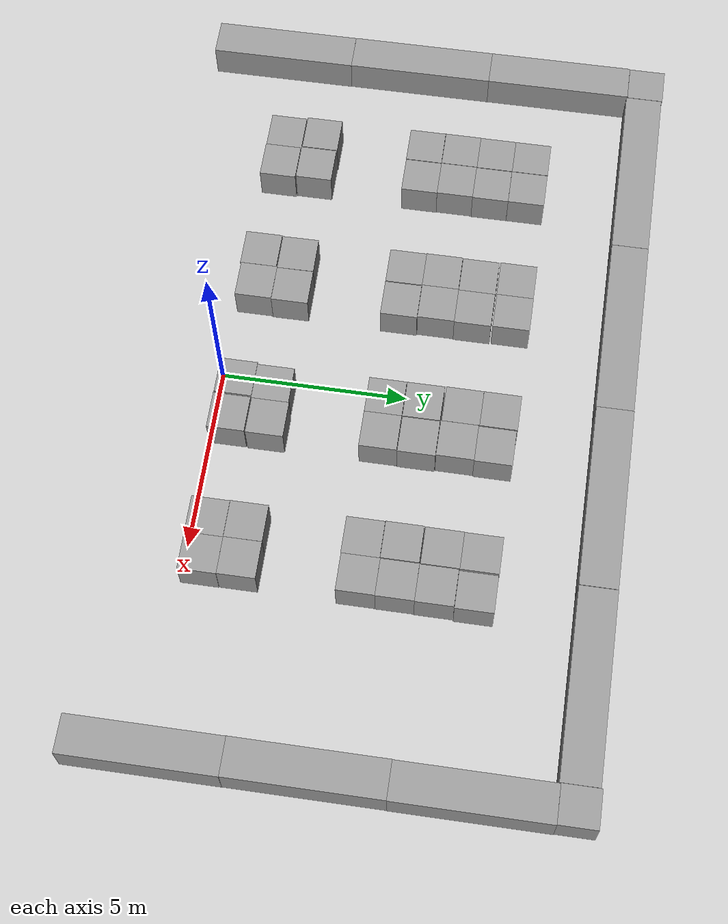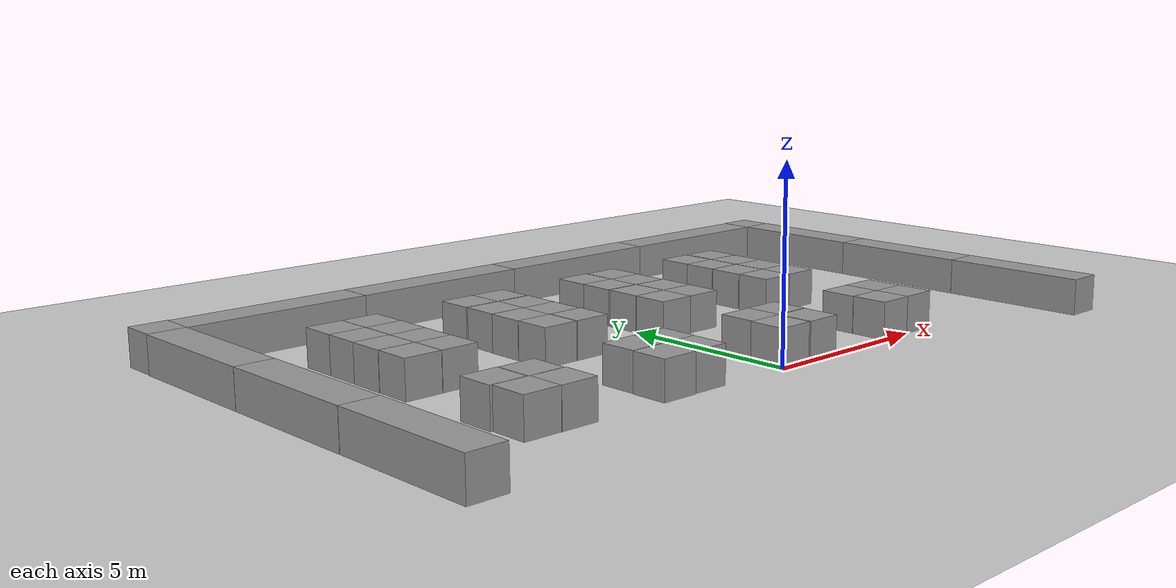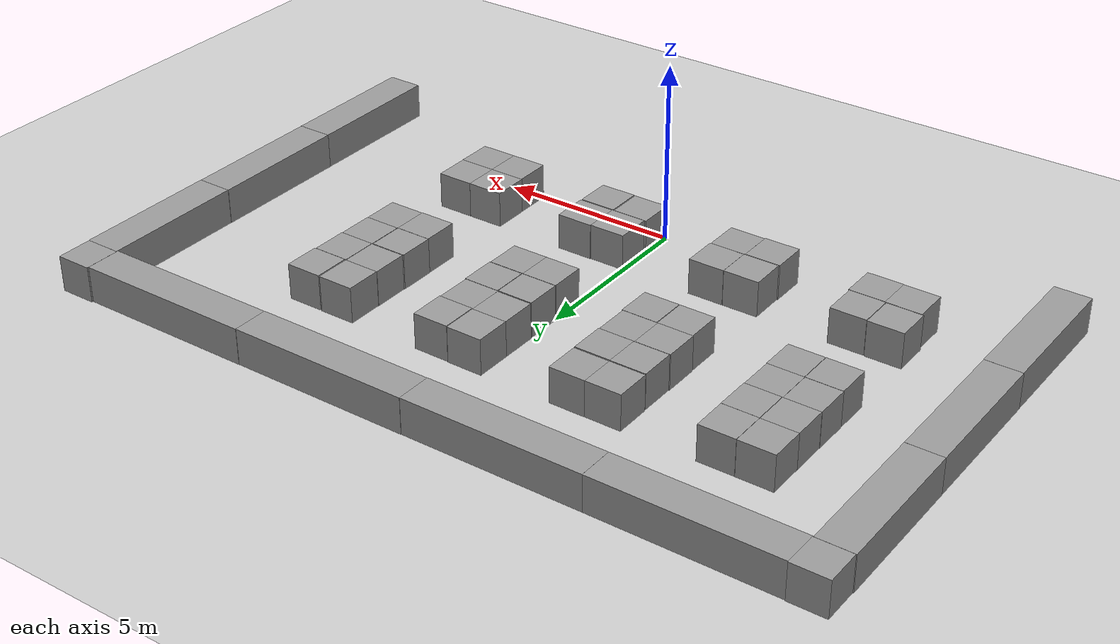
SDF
<sdf version="1.7">
 <world name="default">
  <model name="ground_plane">
   <static>1</static>
   <link name="link">
    <collision name="collision">
     <geometry><plane><normal>0 0 1</normal><size>100 100</size></plane></geometry>
     <surface>
      <contact><collide_bitmask>65535</collide_bitmask></contact>
      <friction><ode><mu>100</mu><mu2>50</mu2></ode></friction>
     </surface>
    </collision>
    <visual name="visual">
     <cast_shadows>0</cast_shadows>
     <geometry><plane><normal>0 0 1</normal><size>100 100</size></plane></geometry>
     <material>
      <script><uri>file://media/materials/scripts/gazebo.material</uri><name>Gazebo/Grey</name></script>
     </material>
    </visual>
   </link>
  </model>
  <model name="unit_box_3">
   <pose>-7.50361 7.53139 0.499995 0 1e-05 -5.5e-05</pose>
   <link name="link">
    <inertial>
     <mass>1</mass>
     <inertia>
      <ixx>0.166667</ixx>
      <ixy>0</ixy>
      <ixz>0</ixz>
      <iyy>0.166667</iyy>
      <iyz>0</iyz>
      <izz>0.166667</izz>
     </inertia>
    </inertial>
    <collision name="collision"><geometry><box><size>1 1 1</size></box></geometry></collision>
    <visual name="visual">
     <geometry><box><size>1 1 1</size></box></geometry>
     <material>
      <script><name>Gazebo/Grey</name><uri>file://media/materials/scripts/gazebo.material</uri></script>
     </material>
    </visual>
   </link>
  </model>
  <model name="unit_box_4">
   <pose>-6.49606 7.5287 0.499995 0 1e-05 0</pose>
   <link name="link">
    <inertial>
     <mass>1</mass>
     <inertia>
      <ixx>0.166667</ixx>
      <ixy>0</ixy>
      <ixz>0</ixz>
      <iyy>0.166667</iyy>
      <iyz>0</iyz>
      <izz>0.166667</izz>
     </inertia>
    </inertial>
    <collision name="collision"><geometry><box><size>1 1 1</size></box></geometry></collision>
    <visual name="visual">
     <geometry><box><size>1 1 1</size></box></geometry>
     <material>
      <script><name>Gazebo/Grey</name><uri>file://media/materials/scripts/gazebo.material</uri></script>
     </material>
    </visual>
   </link>
  </model>
  <model name="unit_box_5">
   <pose>-7.50463 6.53138 0.499995 -0 1e-05 -5.4e-05</pose>
   <link name="link">
    <inertial>
     <mass>1</mass>
     <inertia>
      <ixx>0.166667</ixx>
      <ixy>0</ixy>
      <ixz>0</ixz>
      <iyy>0.166667</iyy>
      <iyz>0</iyz>
      <izz>0.166667</izz>
     </inertia>
    </inertial>
    <collision name="collision"><geometry><box><size>1 1 1</size></box></geometry></collision>
    <visual name="visual">
     <geometry><box><size>1 1 1</size></box></geometry>
     <material>
      <script><name>Gazebo/Grey</name><uri>file://media/materials/scripts/gazebo.material</uri></script>
     </material>
    </visual>
   </link>
  </model>
  <model name="unit_box_7">
   <pose>-7.51098 5.53137 0.499995 0 -1e-05 -6.3e-05</pose>
   <link name="link">
    <inertial>
     <mass>1</mass>
     <inertia>
      <ixx>0.166667</ixx>
      <ixy>0</ixy>
      <ixz>0</ixz>
      <iyy>0.166667</iyy>
      <iyz>0</iyz>
      <izz>0.166667</izz>
     </inertia>
    </inertial>
    <collision name="collision"><geometry><box><size>1 1 1</size></box></geometry></collision>
    <visual name="visual">
     <geometry><box><size>1 1 1</size></box></geometry>
     <material>
      <script><name>Gazebo/Grey</name><uri>file://media/materials/scripts/gazebo.material</uri></script>
     </material>
    </visual>
   </link>
  </model>
  <model name="unit_box_8">
   <pose>-6.5049 5.5275 0.499995 -1e-05 -0 -0.000313</pose>
   <link name="link">
    <inertial>
     <mass>1</mass>
     <inertia>
      <ixx>0.166667</ixx>
      <ixy>0</ixy>
      <ixz>0</ixz>
      <iyy>0.166667</iyy>
      <iyz>0</iyz>
      <izz>0.166667</izz>
     </inertia>
    </inertial>
    <collision name="collision"><geometry><box><size>1 1 1</size></box></geometry></collision>
    <visual name="visual">
     <geometry><box><size>1 1 1</size></box></geometry>
     <material>
      <script><name>Gazebo/Grey</name><uri>file://media/materials/scripts/gazebo.material</uri></script>
     </material>
    </visual>
   </link>
  </model>
  <model name="unit_box_9">
   <pose>-7.50552 4.52464 0.499995 0 1e-05 0</pose>
   <link name="link">
    <inertial>
     <mass>1</mass>
     <inertia>
      <ixx>0.166667</ixx>
      <ixy>0</ixy>
      <ixz>0</ixz>
      <iyy>0.166667</iyy>
      <iyz>0</iyz>
      <izz>0.166667</izz>
     </inertia>
    </inertial>
    <collision name="collision"><geometry><box><size>1 1 1</size></box></geometry></collision>
    <visual name="visual">
     <geometry><box><size>1 1 1</size></box></geometry>
     <material>
      <script><name>Gazebo/Grey</name><uri>file://media/materials/scripts/gazebo.material</uri></script>
     </material>
    </visual>
   </link>
  </model>
  <model name="unit_box_10">
   <pose>-6.49293 4.52745 0.499995 -0 1e-05 -0.000247</pose>
   <link name="link">
    <inertial>
     <mass>1</mass>
     <inertia>
      <ixx>0.166667</ixx>
      <ixy>0</ixy>
      <ixz>0</ixz>
      <iyy>0.166667</iyy>
      <iyz>0</iyz>
      <izz>0.166667</izz>
     </inertia>
    </inertial>
    <collision name="collision"><geometry><box><size>1 1 1</size></box></geometry></collision>
    <visual name="visual">
     <geometry><box><size>1 1 1</size></box></geometry>
     <material>
      <script><name>Gazebo/Grey</name><uri>file://media/materials/scripts/gazebo.material</uri></script>
     </material>
    </visual>
   </link>
  </model>
  <model name="unit_box_6">
   <pose>-6.49182 6.52749 0.499995 0 1e-05 -0.000314</pose>
   <link name="link">
    <inertial>
     <mass>1</mass>
     <inertia>
      <ixx>0.166667</ixx>
      <ixy>0</ixy>
      <ixz>0</ixz>
      <iyy>0.166667</iyy>
      <iyz>0</iyz>
      <izz>0.166667</izz>
     </inertia>
    </inertial>
    <collision name="collision"><geometry><box><size>1 1 1</size></box></geometry></collision>
    <visual name="visual">
     <geometry><box><size>1 1 1</size></box></geometry>
     <material>
      <script><name>Gazebo/Grey</name><uri>file://media/materials/scripts/gazebo.material</uri></script>
     </material>
    </visual>
   </link>
  </model>
  <model name="unit_box_11">
   <pose>-3.49602 7.55128 0.499995 1e-05 -0 4.2e-05</pose>
   <link name="link">
    <inertial>
     <mass>1</mass>
     <inertia>
      <ixx>0.166667</ixx>
      <ixy>0</ixy>
      <ixz>0</ixz>
      <iyy>0.166667</iyy>
      <iyz>0</iyz>
      <izz>0.166667</izz>
     </inertia>
    </inertial>
    <collision name="collision"><geometry><box><size>1 1 1</size></box></geometry></collision>
    <visual name="visual">
     <geometry><box><size>1 1 1</size></box></geometry>
     <material>
      <script><name>Gazebo/Grey</name><uri>file://media/materials/scripts/gazebo.material</uri></script>
     </material>
    </visual>
   </link>
  </model>
  <model name="unit_box_12">
   <pose>-2.49602 7.55405 0.499995 -1e-05 -0 4.2e-05</pose>
   <link name="link">
    <inertial>
     <mass>1</mass>
     <inertia>
      <ixx>0.166667</ixx>
      <ixy>0</ixy>
      <ixz>0</ixz>
      <iyy>0.166667</iyy>
      <iyz>0</iyz>
      <izz>0.166667</izz>
     </inertia>
    </inertial>
    <collision name="collision"><geometry><box><size>1 1 1</size></box></geometry></collision>
    <visual name="visual">
     <geometry><box><size>1 1 1</size></box></geometry>
     <material>
      <script><name>Gazebo/Grey</name><uri>file://media/materials/scripts/gazebo.material</uri></script>
     </material>
    </visual>
   </link>
  </model>
  <model name="unit_box_13">
   <pose>-3.48434 6.51776 0.499995 1e-05 -0 0.000317</pose>
   <link name="link">
    <inertial>
     <mass>1</mass>
     <inertia>
      <ixx>0.166667</ixx>
      <ixy>0</ixy>
      <ixz>0</ixz>
      <iyy>0.166667</iyy>
      <iyz>0</iyz>
      <izz>0.166667</izz>
     </inertia>
    </inertial>
    <collision name="collision"><geometry><box><size>1 1 1</size></box></geometry></collision>
    <visual name="visual">
     <geometry><box><size>1 1 1</size></box></geometry>
     <material>
      <script><name>Gazebo/Grey</name><uri>file://media/materials/scripts/gazebo.material</uri></script>
     </material>
    </visual>
   </link>
  </model>
  <model name="unit_box_14">
   <pose>-2.48433 6.51289 0.5 0 -0 0.000316</pose>
   <link name="link">
    <inertial>
     <mass>1</mass>
     <inertia>
      <ixx>0.166667</ixx>
      <ixy>0</ixy>
      <ixz>0</ixz>
      <iyy>0.166667</iyy>
      <iyz>0</iyz>
      <izz>0.166667</izz>
     </inertia>
    </inertial>
    <collision name="collision"><geometry><box><size>1 1 1</size></box></geometry></collision>
    <visual name="visual">
     <geometry><box><size>1 1 1</size></box></geometry>
     <material>
      <script><name>Gazebo/Grey</name><uri>file://media/materials/scripts/gazebo.material</uri></script>
     </material>
    </visual>
   </link>
  </model>
  <model name="unit_box_15">
   <pose>-3.50144 5.50839 0.499995 -0 -1e-05 0.000289</pose>
   <link name="link">
    <inertial>
     <mass>1</mass>
     <inertia>
      <ixx>0.166667</ixx>
      <ixy>0</ixy>
      <ixz>0</ixz>
      <iyy>0.166667</iyy>
      <iyz>0</iyz>
      <izz>0.166667</izz>
     </inertia>
    </inertial>
    <collision name="collision"><geometry><box><size>1 1 1</size></box></geometry></collision>
    <visual name="visual">
     <geometry><box><size>1 1 1</size></box></geometry>
     <material>
      <script><name>Gazebo/Grey</name><uri>file://media/materials/scripts/gazebo.material</uri></script>
     </material>
    </visual>
   </link>
  </model>
  <model name="unit_box_16">
   <pose>-2.50142 5.51286 0.499995 1e-05 -0 0.000288</pose>
   <link name="link">
    <inertial>
     <mass>1</mass>
     <inertia>
      <ixx>0.166667</ixx>
      <ixy>0</ixy>
      <ixz>0</ixz>
      <iyy>0.166667</iyy>
      <iyz>0</iyz>
      <izz>0.166667</izz>
     </inertia>
    </inertial>
    <collision name="collision"><geometry><box><size>1 1 1</size></box></geometry></collision>
    <visual name="visual">
     <geometry><box><size>1 1 1</size></box></geometry>
     <material>
      <script><name>Gazebo/Grey</name><uri>file://media/materials/scripts/gazebo.material</uri></script>
     </material>
    </visual>
   </link>
  </model>
  <model name="unit_box_17">
   <pose>-3.48682 4.50839 0.499995 0 -1e-05 0.00029</pose>
   <link name="link">
    <inertial>
     <mass>1</mass>
     <inertia>
      <ixx>0.166667</ixx>
      <ixy>0</ixy>
      <ixz>0</ixz>
      <iyy>0.166667</iyy>
      <iyz>0</iyz>
      <izz>0.166667</izz>
     </inertia>
    </inertial>
    <collision name="collision"><geometry><box><size>1 1 1</size></box></geometry></collision>
    <visual name="visual">
     <geometry><box><size>1 1 1</size></box></geometry>
     <material>
      <script><name>Gazebo/Grey</name><uri>file://media/materials/scripts/gazebo.material</uri></script>
     </material>
    </visual>
   </link>
  </model>
  <model name="unit_box_18">
   <pose>-2.46798 4.50679 0.499995 0 1e-05 0</pose>
   <link name="link">
    <inertial>
     <mass>1</mass>
     <inertia>
      <ixx>0.166667</ixx>
      <ixy>0</ixy>
      <ixz>0</ixz>
      <iyy>0.166667</iyy>
      <iyz>0</iyz>
      <izz>0.166667</izz>
     </inertia>
    </inertial>
    <collision name="collision"><geometry><box><size>1 1 1</size></box></geometry></collision>
    <visual name="visual">
     <geometry><box><size>1 1 1</size></box></geometry>
     <material>
      <script><name>Gazebo/Grey</name><uri>file://media/materials/scripts/gazebo.material</uri></script>
     </material>
    </visual>
   </link>
  </model>
  <model name="unit_box_19">
   <pose>0.486806 7.5569 0.499995 0 1e-05 -0.003814</pose>
   <link name="link">
    <inertial>
     <mass>1</mass>
     <inertia>
      <ixx>0.166667</ixx>
      <ixy>0</ixy>
      <ixz>0</ixz>
      <iyy>0.166667</iyy>
      <iyz>0</iyz>
      <izz>0.166667</izz>
     </inertia>
    </inertial>
    <collision name="collision"><geometry><box><size>1 1 1</size></box></geometry></collision>
    <visual name="visual">
     <geometry><box><size>1 1 1</size></box></geometry>
     <material>
      <script><name>Gazebo/Grey</name><uri>file://media/materials/scripts/gazebo.material</uri></script>
     </material>
    </visual>
   </link>
  </model>
  <model name="unit_box_20">
   <pose>0.484165 6.55672 0.499995 -1e-05 0 -0.003555</pose>
   <link name="link">
    <inertial>
     <mass>1</mass>
     <inertia>
      <ixx>0.166667</ixx>
      <ixy>0</ixy>
      <ixz>0</ixz>
      <iyy>0.166667</iyy>
      <iyz>0</iyz>
      <izz>0.166667</izz>
     </inertia>
    </inertial>
    <collision name="collision"><geometry><box><size>1 1 1</size></box></geometry></collision>
    <visual name="visual">
     <geometry><box><size>1 1 1</size></box></geometry>
     <material>
      <script><name>Gazebo/Grey</name><uri>file://media/materials/scripts/gazebo.material</uri></script>
     </material>
    </visual>
   </link>
  </model>
  <model name="unit_box_21">
   <pose>1.50946 7.53476 0.499995 1e-05 -0 -0.003222</pose>
   <link name="link">
    <inertial>
     <mass>1</mass>
     <inertia>
      <ixx>0.166667</ixx>
      <ixy>0</ixy>
      <ixz>0</ixz>
      <iyy>0.166667</iyy>
      <iyz>0</iyz>
      <izz>0.166667</izz>
     </inertia>
    </inertial>
    <collision name="collision"><geometry><box><size>1 1 1</size></box></geometry></collision>
    <visual name="visual">
     <geometry><box><size>1 1 1</size></box></geometry>
     <material>
      <script><name>Gazebo/Grey</name><uri>file://media/materials/scripts/gazebo.material</uri></script>
     </material>
    </visual>
   </link>
  </model>
  <model name="unit_box_22">
   <pose>1.48426 6.5347 0.499995 1e-05 -0 -0.003346</pose>
   <link name="link">
    <inertial>
     <mass>1</mass>
     <inertia>
      <ixx>0.166667</ixx>
      <ixy>0</ixy>
      <ixz>0</ixz>
      <iyy>0.166667</iyy>
      <iyz>0</iyz>
      <izz>0.166667</izz>
     </inertia>
    </inertial>
    <collision name="collision"><geometry><box><size>1 1 1</size></box></geometry></collision>
    <visual name="visual">
     <geometry><box><size>1 1 1</size></box></geometry>
     <material>
      <script><name>Gazebo/Grey</name><uri>file://media/materials/scripts/gazebo.material</uri></script>
     </material>
    </visual>
   </link>
  </model>
  <model name="unit_box_23">
   <pose>0.491891 5.52017 0.499995 0 1e-05 0</pose>
   <link name="link">
    <inertial>
     <mass>1</mass>
     <inertia>
      <ixx>0.166667</ixx>
      <ixy>0</ixy>
      <ixz>0</ixz>
      <iyy>0.166667</iyy>
      <iyz>0</iyz>
      <izz>0.166667</izz>
     </inertia>
    </inertial>
    <collision name="collision"><geometry><box><size>1 1 1</size></box></geometry></collision>
    <visual name="visual">
     <geometry><box><size>1 1 1</size></box></geometry>
     <material>
      <script><name>Gazebo/Grey</name><uri>file://media/materials/scripts/gazebo.material</uri></script>
     </material>
    </visual>
   </link>
  </model>
  <model name="unit_box_24">
   <pose>1.50944 5.52411 0.499995 0 1e-05 0</pose>
   <link name="link">
    <inertial>
     <mass>1</mass>
     <inertia>
      <ixx>0.166667</ixx>
      <ixy>0</ixy>
      <ixz>0</ixz>
      <iyy>0.166667</iyy>
      <iyz>0</iyz>
      <izz>0.166667</izz>
     </inertia>
    </inertial>
    <collision name="collision"><geometry><box><size>1 1 1</size></box></geometry></collision>
    <visual name="visual">
     <geometry><box><size>1 1 1</size></box></geometry>
     <material>
      <script><name>Gazebo/Grey</name><uri>file://media/materials/scripts/gazebo.material</uri></script>
     </material>
    </visual>
   </link>
  </model>
  <model name="unit_box_25">
   <pose>0.492022 4.50931 0.499995 1e-05 -0 5e-06</pose>
   <link name="link">
    <inertial>
     <mass>1</mass>
     <inertia>
      <ixx>0.166667</ixx>
      <ixy>0</ixy>
      <ixz>0</ixz>
      <iyy>0.166667</iyy>
      <iyz>0</iyz>
      <izz>0.166667</izz>
     </inertia>
    </inertial>
    <collision name="collision"><geometry><box><size>1 1 1</size></box></geometry></collision>
    <visual name="visual">
     <geometry><box><size>1 1 1</size></box></geometry>
     <material>
      <script><name>Gazebo/Grey</name><uri>file://media/materials/scripts/gazebo.material</uri></script>
     </material>
    </visual>
   </link>
  </model>
  <model name="unit_box_26">
   <pose>1.49204 4.50876 0.499995 -1e-05 -0 1e-05</pose>
   <link name="link">
    <inertial>
     <mass>1</mass>
     <inertia>
      <ixx>0.166667</ixx>
      <ixy>0</ixy>
      <ixz>0</ixz>
      <iyy>0.166667</iyy>
      <iyz>0</iyz>
      <izz>0.166667</izz>
     </inertia>
    </inertial>
    <collision name="collision"><geometry><box><size>1 1 1</size></box></geometry></collision>
    <visual name="visual">
     <geometry><box><size>1 1 1</size></box></geometry>
     <material>
      <script><name>Gazebo/Grey</name><uri>file://media/materials/scripts/gazebo.material</uri></script>
     </material>
    </visual>
   </link>
  </model>
  <model name="unit_box_27">
   <pose>4.51157 7.53417 0.499995 -1e-05 -0 -2.4e-05</pose>
   <link name="link">
    <inertial>
     <mass>1</mass>
     <inertia>
      <ixx>0.166667</ixx>
      <ixy>0</ixy>
      <ixz>0</ixz>
      <iyy>0.166667</iyy>
      <iyz>0</iyz>
      <izz>0.166667</izz>
     </inertia>
    </inertial>
    <collision name="collision"><geometry><box><size>1 1 1</size></box></geometry></collision>
    <visual name="visual">
     <geometry><box><size>1 1 1</size></box></geometry>
     <material>
      <script><name>Gazebo/Grey</name><uri>file://media/materials/scripts/gazebo.material</uri></script>
     </material>
    </visual>
   </link>
  </model>
  <model name="unit_box_28">
   <pose>5.55239 7.52483 0.499995 0 1e-05 0</pose>
   <link name="link">
    <inertial>
     <mass>1</mass>
     <inertia>
      <ixx>0.166667</ixx>
      <ixy>0</ixy>
      <ixz>0</ixz>
      <iyy>0.166667</iyy>
      <iyz>0</iyz>
      <izz>0.166667</izz>
     </inertia>
    </inertial>
    <collision name="collision"><geometry><box><size>1 1 1</size></box></geometry></collision>
    <visual name="visual">
     <geometry><box><size>1 1 1</size></box></geometry>
     <material>
      <script><name>Gazebo/Grey</name><uri>file://media/materials/scripts/gazebo.material</uri></script>
     </material>
    </visual>
   </link>
  </model>
  <model name="unit_box_29">
   <pose>4.50242 6.53416 0.499995 0 1e-05 -2.3e-05</pose>
   <link name="link">
    <inertial>
     <mass>1</mass>
     <inertia>
      <ixx>0.166667</ixx>
      <ixy>0</ixy>
      <ixz>0</ixz>
      <iyy>0.166667</iyy>
      <iyz>0</iyz>
      <izz>0.166667</izz>
     </inertia>
    </inertial>
    <collision name="collision"><geometry><box><size>1 1 1</size></box></geometry></collision>
    <visual name="visual">
     <geometry><box><size>1 1 1</size></box></geometry>
     <material>
      <script><name>Gazebo/Grey</name><uri>file://media/materials/scripts/gazebo.material</uri></script>
     </material>
    </visual>
   </link>
  </model>
  <model name="unit_box_30">
   <pose>5.51848 6.5195 0.499995 0 1e-05 7.5e-05</pose>
   <link name="link">
    <inertial>
     <mass>1</mass>
     <inertia>
      <ixx>0.166667</ixx>
      <ixy>0</ixy>
      <ixz>0</ixz>
      <iyy>0.166667</iyy>
      <iyz>0</iyz>
      <izz>0.166667</izz>
     </inertia>
    </inertial>
    <collision name="collision"><geometry><box><size>1 1 1</size></box></geometry></collision>
    <visual name="visual">
     <geometry><box><size>1 1 1</size></box></geometry>
     <material>
      <script><name>Gazebo/Grey</name><uri>file://media/materials/scripts/gazebo.material</uri></script>
     </material>
    </visual>
   </link>
  </model>
  <model name="unit_box_31">
   <pose>4.48757 5.5114 0.499995 0 1e-05 0</pose>
   <link name="link">
    <inertial>
     <mass>1</mass>
     <inertia>
      <ixx>0.166667</ixx>
      <ixy>0</ixy>
      <ixz>0</ixz>
      <iyy>0.166667</iyy>
      <iyz>0</iyz>
      <izz>0.166667</izz>
     </inertia>
    </inertial>
    <collision name="collision"><geometry><box><size>1 1 1</size></box></geometry></collision>
    <visual name="visual">
     <geometry><box><size>1 1 1</size></box></geometry>
     <material>
      <script><name>Gazebo/Grey</name><uri>file://media/materials/scripts/gazebo.material</uri></script>
     </material>
    </visual>
   </link>
  </model>
  <model name="unit_box_32">
   <pose>5.50629 5.51942 0.499995 -1e-05 -0 4.7e-05</pose>
   <link name="link">
    <inertial>
     <mass>1</mass>
     <inertia>
      <ixx>0.166667</ixx>
      <ixy>0</ixy>
      <ixz>0</ixz>
      <iyy>0.166667</iyy>
      <iyz>0</iyz>
      <izz>0.166667</izz>
     </inertia>
    </inertial>
    <collision name="collision"><geometry><box><size>1 1 1</size></box></geometry></collision>
    <visual name="visual">
     <geometry><box><size>1 1 1</size></box></geometry>
     <material>
      <script><name>Gazebo/Grey</name><uri>file://media/materials/scripts/gazebo.material</uri></script>
     </material>
    </visual>
   </link>
  </model>
  <model name="unit_box_33">
   <pose>4.49774 4.5066 0.499995 1e-05 0 -0.000363</pose>
   <link name="link">
    <inertial>
     <mass>1</mass>
     <inertia>
      <ixx>0.166667</ixx>
      <ixy>0</ixy>
      <ixz>0</ixz>
      <iyy>0.166667</iyy>
      <iyz>0</iyz>
      <izz>0.166667</izz>
     </inertia>
    </inertial>
    <collision name="collision"><geometry><box><size>1 1 1</size></box></geometry></collision>
    <visual name="visual">
     <geometry><box><size>1 1 1</size></box></geometry>
     <material>
      <script><name>Gazebo/Grey</name><uri>file://media/materials/scripts/gazebo.material</uri></script>
     </material>
    </visual>
   </link>
  </model>
  <model name="unit_box_34">
   <pose>5.49784 4.51923 0.499995 -1e-05 -0 -0.000195</pose>
   <link name="link">
    <inertial>
     <mass>1</mass>
     <inertia>
      <ixx>0.166667</ixx>
      <ixy>0</ixy>
      <ixz>0</ixz>
      <iyy>0.166667</iyy>
      <iyz>0</iyz>
      <izz>0.166667</izz>
     </inertia>
    </inertial>
    <collision name="collision"><geometry><box><size>1 1 1</size></box></geometry></collision>
    <visual name="visual">
     <geometry><box><size>1 1 1</size></box></geometry>
     <material>
      <script><name>Gazebo/Grey</name><uri>file://media/materials/scripts/gazebo.material</uri></script>
     </material>
    </visual>
   </link>
  </model>
  <model name="unit_box_35">
   <pose>-7.51114 1.54685 0.499995 0 1e-05 0</pose>
   <link name="link">
    <inertial>
     <mass>1</mass>
     <inertia>
      <ixx>0.166667</ixx>
      <ixy>0</ixy>
      <ixz>0</ixz>
      <iyy>0.166667</iyy>
      <iyz>0</iyz>
      <izz>0.166667</izz>
     </inertia>
    </inertial>
    <collision name="collision"><geometry><box><size>1 1 1</size></box></geometry></collision>
    <visual name="visual">
     <geometry><box><size>1 1 1</size></box></geometry>
     <material>
      <script><name>Gazebo/Grey</name><uri>file://media/materials/scripts/gazebo.material</uri></script>
     </material>
    </visual>
   </link>
  </model>
  <model name="unit_box_36">
   <pose>-6.4947 1.53041 0.499995 0 1e-05 0</pose>
   <link name="link">
    <inertial>
     <mass>1</mass>
     <inertia>
      <ixx>0.166667</ixx>
      <ixy>0</ixy>
      <ixz>0</ixz>
      <iyy>0.166667</iyy>
      <iyz>0</iyz>
      <izz>0.166667</izz>
     </inertia>
    </inertial>
    <collision name="collision"><geometry><box><size>1 1 1</size></box></geometry></collision>
    <visual name="visual">
     <geometry><box><size>1 1 1</size></box></geometry>
     <material>
      <script><name>Gazebo/Grey</name><uri>file://media/materials/scripts/gazebo.material</uri></script>
     </material>
    </visual>
   </link>
  </model>
  <model name="unit_box_37">
   <pose>-7.45951 0.528875 0.499995 -0 1e-05 -0.001052</pose>
   <link name="link">
    <inertial>
     <mass>1</mass>
     <inertia>
      <ixx>0.166667</ixx>
      <ixy>0</ixy>
      <ixz>0</ixz>
      <iyy>0.166667</iyy>
      <iyz>0</iyz>
      <izz>0.166667</izz>
     </inertia>
    </inertial>
    <collision name="collision"><geometry><box><size>1 1 1</size></box></geometry></collision>
    <visual name="visual">
     <geometry><box><size>1 1 1</size></box></geometry>
     <material>
      <script><name>Gazebo/Grey</name><uri>file://media/materials/scripts/gazebo.material</uri></script>
     </material>
    </visual>
   </link>
  </model>
  <model name="unit_box_38">
   <pose>-6.45898 0.514165 0.499995 -1e-05 -0 -0.00116</pose>
   <link name="link">
    <inertial>
     <mass>1</mass>
     <inertia>
      <ixx>0.166667</ixx>
      <ixy>0</ixy>
      <ixz>0</ixz>
      <iyy>0.166667</iyy>
      <iyz>0</iyz>
      <izz>0.166667</izz>
     </inertia>
    </inertial>
    <collision name="collision"><geometry><box><size>1 1 1</size></box></geometry></collision>
    <visual name="visual">
     <geometry><box><size>1 1 1</size></box></geometry>
     <material>
      <script><name>Gazebo/Grey</name><uri>file://media/materials/scripts/gazebo.material</uri></script>
     </material>
    </visual>
   </link>
  </model>
  <model name="unit_box_43">
   <pose>-3.49211 1.51005 0.499995 -1e-05 -0 0.008286</pose>
   <link name="link">
    <inertial>
     <mass>1</mass>
     <inertia>
      <ixx>0.166667</ixx>
      <ixy>0</ixy>
      <ixz>0</ixz>
      <iyy>0.166667</iyy>
      <iyz>0</iyz>
      <izz>0.166667</izz>
     </inertia>
    </inertial>
    <collision name="collision"><geometry><box><size>1 1 1</size></box></geometry></collision>
    <visual name="visual">
     <geometry><box><size>1 1 1</size></box></geometry>
     <material>
      <script><name>Gazebo/Grey</name><uri>file://media/materials/scripts/gazebo.material</uri></script>
     </material>
    </visual>
   </link>
  </model>
  <model name="unit_box_44">
   <pose>-2.48883 1.51534 0.499995 1e-05 -0 0.001695</pose>
   <link name="link">
    <inertial>
     <mass>1</mass>
     <inertia>
      <ixx>0.166667</ixx>
      <ixy>0</ixy>
      <ixz>0</ixz>
      <iyy>0.166667</iyy>
      <iyz>0</iyz>
      <izz>0.166667</izz>
     </inertia>
    </inertial>
    <collision name="collision"><geometry><box><size>1 1 1</size></box></geometry></collision>
    <visual name="visual">
     <geometry><box><size>1 1 1</size></box></geometry>
     <material>
      <script><name>Gazebo/Grey</name><uri>file://media/materials/scripts/gazebo.material</uri></script>
     </material>
    </visual>
   </link>
  </model>
  <model name="unit_box_45">
   <pose>-3.51074 0.487476 0.5 0 -0 0.002136</pose>
   <link name="link">
    <inertial>
     <mass>1</mass>
     <inertia>
      <ixx>0.166667</ixx>
      <ixy>0</ixy>
      <ixz>0</ixz>
      <iyy>0.166667</iyy>
      <iyz>0</iyz>
      <izz>0.166667</izz>
     </inertia>
    </inertial>
    <collision name="collision"><geometry><box><size>1 1 1</size></box></geometry></collision>
    <visual name="visual">
     <geometry><box><size>1 1 1</size></box></geometry>
     <material>
      <script><name>Gazebo/Grey</name><uri>file://media/materials/scripts/gazebo.material</uri></script>
     </material>
    </visual>
   </link>
  </model>
  <model name="unit_box_46">
   <pose>-2.51002 0.514275 0.500001 -1e-06 -0 0.000579</pose>
   <link name="link">
    <inertial>
     <mass>1</mass>
     <inertia>
      <ixx>0.166667</ixx>
      <ixy>0</ixy>
      <ixz>0</ixz>
      <iyy>0.166667</iyy>
      <iyz>0</iyz>
      <izz>0.166667</izz>
     </inertia>
    </inertial>
    <collision name="collision"><geometry><box><size>1 1 1</size></box></geometry></collision>
    <visual name="visual">
     <geometry><box><size>1 1 1</size></box></geometry>
     <material>
      <script><name>Gazebo/Grey</name><uri>file://media/materials/scripts/gazebo.material</uri></script>
     </material>
    </visual>
   </link>
  </model>
  <model name="unit_box_51">
   <pose>0.526269 1.50642 0.499995 1e-05 -0 0.000133</pose>
   <link name="link">
    <inertial>
     <mass>1</mass>
     <inertia>
      <ixx>0.166667</ixx>
      <ixy>0</ixy>
      <ixz>0</ixz>
      <iyy>0.166667</iyy>
      <iyz>0</iyz>
      <izz>0.166667</izz>
     </inertia>
    </inertial>
    <collision name="collision"><geometry><box><size>1 1 1</size></box></geometry></collision>
    <visual name="visual">
     <geometry><box><size>1 1 1</size></box></geometry>
     <material>
      <script><name>Gazebo/Grey</name><uri>file://media/materials/scripts/gazebo.material</uri></script>
     </material>
    </visual>
   </link>
  </model>
  <model name="unit_box_52">
   <pose>1.52627 1.52478 0.499995 1e-05 -0 0.000136</pose>
   <link name="link">
    <inertial>
     <mass>1</mass>
     <inertia>
      <ixx>0.166667</ixx>
      <ixy>0</ixy>
      <ixz>0</ixz>
      <iyy>0.166667</iyy>
      <iyz>0</iyz>
      <izz>0.166667</izz>
     </inertia>
    </inertial>
    <collision name="collision"><geometry><box><size>1 1 1</size></box></geometry></collision>
    <visual name="visual">
     <geometry><box><size>1 1 1</size></box></geometry>
     <material>
      <script><name>Gazebo/Grey</name><uri>file://media/materials/scripts/gazebo.material</uri></script>
     </material>
    </visual>
   </link>
  </model>
  <model name="unit_box_53">
   <pose>0.474171 0.503729 0.499995 -1e-05 0 0.000364</pose>
   <link name="link">
    <inertial>
     <mass>1</mass>
     <inertia>
      <ixx>0.166667</ixx>
      <ixy>0</ixy>
      <ixz>0</ixz>
      <iyy>0.166667</iyy>
      <iyz>0</iyz>
      <izz>0.166667</izz>
     </inertia>
    </inertial>
    <collision name="collision"><geometry><box><size>1 1 1</size></box></geometry></collision>
    <visual name="visual">
     <geometry><box><size>1 1 1</size></box></geometry>
     <material>
      <script><name>Gazebo/Grey</name><uri>file://media/materials/scripts/gazebo.material</uri></script>
     </material>
    </visual>
   </link>
  </model>
  <model name="unit_box_54">
   <pose>1.51321 0.495733 0.499995 -1e-05 -0 0.002147</pose>
   <link name="link">
    <inertial>
     <mass>1</mass>
     <inertia>
      <ixx>0.166667</ixx>
      <ixy>0</ixy>
      <ixz>0</ixz>
      <iyy>0.166667</iyy>
      <iyz>0</iyz>
      <izz>0.166667</izz>
     </inertia>
    </inertial>
    <collision name="collision"><geometry><box><size>1 1 1</size></box></geometry></collision>
    <visual name="visual">
     <geometry><box><size>1 1 1</size></box></geometry>
     <material>
      <script><name>Gazebo/Grey</name><uri>file://media/materials/scripts/gazebo.material</uri></script>
     </material>
    </visual>
   </link>
  </model>
  <model name="unit_box_59">
   <pose>4.48463 1.50218 0.499995 -0 1e-05 4.8e-05</pose>
   <link name="link">
    <inertial>
     <mass>1</mass>
     <inertia>
      <ixx>0.166667</ixx>
      <ixy>0</ixy>
      <ixz>0</ixz>
      <iyy>0.166667</iyy>
      <iyz>0</iyz>
      <izz>0.166667</izz>
     </inertia>
    </inertial>
    <collision name="collision"><geometry><box><size>1 1 1</size></box></geometry></collision>
    <visual name="visual">
     <geometry><box><size>1 1 1</size></box></geometry>
     <material>
      <script><name>Gazebo/Grey</name><uri>file://media/materials/scripts/gazebo.material</uri></script>
     </material>
    </visual>
   </link>
  </model>
  <model name="unit_box_60">
   <pose>5.48489 1.50243 0.499995 -1e-05 -0 -0.000156</pose>
   <link name="link">
    <inertial>
     <mass>1</mass>
     <inertia>
      <ixx>0.166667</ixx>
      <ixy>0</ixy>
      <ixz>0</ixz>
      <iyy>0.166667</iyy>
      <iyz>0</iyz>
      <izz>0.166667</izz>
     </inertia>
    </inertial>
    <collision name="collision"><geometry><box><size>1 1 1</size></box></geometry></collision>
    <visual name="visual">
     <geometry><box><size>1 1 1</size></box></geometry>
     <material>
      <script><name>Gazebo/Grey</name><uri>file://media/materials/scripts/gazebo.material</uri></script>
     </material>
    </visual>
   </link>
  </model>
  <model name="unit_box_61">
   <pose>4.49449 0.497341 0.499995 -1e-05 -0 0.000216</pose>
   <link name="link">
    <inertial>
     <mass>1</mass>
     <inertia>
      <ixx>0.166667</ixx>
      <ixy>0</ixy>
      <ixz>0</ixz>
      <iyy>0.166667</iyy>
      <iyz>0</iyz>
      <izz>0.166667</izz>
     </inertia>
    </inertial>
    <collision name="collision"><geometry><box><size>1 1 1</size></box></geometry></collision>
    <visual name="visual">
     <geometry><box><size>1 1 1</size></box></geometry>
     <material>
      <script><name>Gazebo/Grey</name><uri>file://media/materials/scripts/gazebo.material</uri></script>
     </material>
    </visual>
   </link>
  </model>
  <model name="unit_box_62">
   <pose>5.49469 0.502379 0.499995 0 -1e-05 -0.000107</pose>
   <link name="link">
    <inertial>
     <mass>1</mass>
     <inertia>
      <ixx>0.166667</ixx>
      <ixy>0</ixy>
      <ixz>0</ixz>
      <iyy>0.166667</iyy>
      <iyz>0</iyz>
      <izz>0.166667</izz>
     </inertia>
    </inertial>
    <collision name="collision"><geometry><box><size>1 1 1</size></box></geometry></collision>
    <visual name="visual">
     <geometry><box><size>1 1 1</size></box></geometry>
     <material>
      <script><name>Gazebo/Grey</name><uri>file://media/materials/scripts/gazebo.material</uri></script>
     </material>
    </visual>
   </link>
  </model>
  <model name="unit_box_clone_1_clone_0">
   <pose>-2.50138 10.5148 0.497878 0 0.000849 2.2e-05</pose>
   <link name="link">
    <inertial>
     <mass>1</mass>
     <inertia>
      <ixx>0.166667</ixx>
      <ixy>0</ixy>
      <ixz>0</ixz>
      <iyy>0.166667</iyy>
      <iyz>0</iyz>
      <izz>0.166667</izz>
     </inertia>
    </inertial>
    <collision name="collision"><geometry><box><size>4.99976 1 1</size></box></geometry></collision>
    <visual name="visual">
     <geometry><box><size>4.99976 1 1</size></box></geometry>
     <material>
      <script><name>Gazebo/Grey</name><uri>file://media/materials/scripts/gazebo.material</uri></script>
     </material>
    </visual>
   </link>
  </model>
  <model name="unit_box_clone_1_clone">
   <pose>-7.50112 10.5141 0.497878 0 -0.000849 -2.3e-05</pose>
   <link name="link">
    <inertial>
     <mass>1</mass>
     <inertia>
      <ixx>0.166667</ixx>
      <ixy>0</ixy>
      <ixz>0</ixz>
      <iyy>0.166667</iyy>
      <iyz>0</iyz>
      <izz>0.166667</izz>
     </inertia>
    </inertial>
    <collision name="collision"><geometry><box><size>4.99976 1 1</size></box></geometry></collision>
    <visual name="visual">
     <geometry><box><size>4.99976 1 1</size></box></geometry>
     <material>
      <script><name>Gazebo/Grey</name><uri>file://media/materials/scripts/gazebo.material</uri></script>
     </material>
    </visual>
   </link>
  </model>
  <model name="unit_box_clone_1_clone_1">
   <pose>2.49884 10.5226 0.497878 -0 -0.000849 2.4e-05</pose>
   <link name="link">
    <inertial>
     <mass>1</mass>
     <inertia>
      <ixx>0.166667</ixx>
      <ixy>0</ixy>
      <ixz>0</ixz>
      <iyy>0.166667</iyy>
      <iyz>0</iyz>
      <izz>0.166667</izz>
     </inertia>
    </inertial>
    <collision name="collision"><geometry><box><size>4.99976 1 1</size></box></geometry></collision>
    <visual name="visual">
     <geometry><box><size>4.99976 1 1</size></box></geometry>
     <material>
      <script><name>Gazebo/Grey</name><uri>file://media/materials/scripts/gazebo.material</uri></script>
     </material>
    </visual>
   </link>
  </model>
  <model name="unit_box_clone_1_clone_2">
   <pose>7.50434 10.5249 0.497878 0 -0.000849 2.2e-05</pose>
   <link name="link">
    <inertial>
     <mass>1</mass>
     <inertia>
      <ixx>0.166667</ixx>
      <ixy>0</ixy>
      <ixz>0</ixz>
      <iyy>0.166667</iyy>
      <iyz>0</iyz>
      <izz>0.166667</izz>
     </inertia>
    </inertial>
    <collision name="collision"><geometry><box><size>4.99976 1 1</size></box></geometry></collision>
    <visual name="visual">
     <geometry><box><size>4.99976 1 1</size></box></geometry>
     <material>
      <script><name>Gazebo/Grey</name><uri>file://media/materials/scripts/gazebo.material</uri></script>
     </material>
    </visual>
   </link>
  </model>
  <model name="unit_box">
   <pose>10.5201 8.04867 0.5 -0 1e-06 -2.8e-05</pose>
   <link name="link">
    <inertial>
     <mass>1</mass>
     <inertia>
      <ixx>0.166667</ixx>
      <ixy>0</ixy>
      <ixz>0</ixz>
      <iyy>0.166667</iyy>
      <iyz>0</iyz>
      <izz>0.166667</izz>
     </inertia>
    </inertial>
    <collision name="collision"><geometry><box><size>1 4.03512 1</size></box></geometry></collision>
    <visual name="visual">
     <geometry><box><size>1 4.03512 1</size></box></geometry>
     <material>
      <script><name>Gazebo/Grey</name><uri>file://media/materials/scripts/gazebo.material</uri></script>
     </material>
    </visual>
   </link>
  </model>
  <model name="unit_box_clone_2">
   <pose>10.5133 4.02015 0.5 0 -0 2.9e-05</pose>
   <link name="link">
    <inertial>
     <mass>1</mass>
     <inertia>
      <ixx>0.166667</ixx>
      <ixy>0</ixy>
      <ixz>0</ixz>
      <iyy>0.166667</iyy>
      <iyz>0</iyz>
      <izz>0.166667</izz>
     </inertia>
    </inertial>
    <collision name="collision"><geometry><box><size>1 4.02153 1</size></box></geometry></collision>
    <visual name="visual">
     <geometry><box><size>1 4.02153 1</size></box></geometry>
     <material>
      <script><name>Gazebo/Grey</name><uri>file://media/materials/scripts/gazebo.material</uri></script>
     </material>
    </visual>
   </link>
  </model>
  <model name="unit_box_clone_3">
   <pose>10.519 -0.001437 0.5 0 -0 8.6e-05</pose>
   <link name="link">
    <inertial>
     <mass>1</mass>
     <inertia>
      <ixx>0.166667</ixx>
      <ixy>0</ixy>
      <ixz>0</ixz>
      <iyy>0.166667</iyy>
      <iyz>0</iyz>
      <izz>0.166667</izz>
     </inertia>
    </inertial>
    <collision name="collision"><geometry><box><size>1 4.02153 1</size></box></geometry></collision>
    <visual name="visual">
     <geometry><box><size>1 4.02153 1</size></box></geometry>
     <material>
      <script><name>Gazebo/Grey</name><uri>file://media/materials/scripts/gazebo.material</uri></script>
     </material>
    </visual>
   </link>
  </model>
  <model name="unit_box_clone_8">
   <pose>-10.5011 -0.017924 0.499997 0 -5e-06 0.000825</pose>
   <link name="link">
    <inertial>
     <mass>1</mass>
     <inertia>
      <ixx>0.166667</ixx>
      <ixy>0</ixy>
      <ixz>0</ixz>
      <iyy>0.166667</iyy>
      <iyz>0</iyz>
      <izz>0.166667</izz>
     </inertia>
    </inertial>
    <collision name="collision"><geometry><box><size>1 4.02153 1</size></box></geometry></collision>
    <visual name="visual">
     <geometry><box><size>1 4.02153 1</size></box></geometry>
     <material>
      <script><name>Gazebo/Grey</name><uri>file://media/materials/scripts/gazebo.material</uri></script>
     </material>
    </visual>
   </link>
  </model>
  <model name="unit_box_clone_9">
   <pose>-10.5114 4.00428 0.5 0 -1e-06 0.00117</pose>
   <link name="link">
    <inertial>
     <mass>1</mass>
     <inertia>
      <ixx>0.166667</ixx>
      <ixy>0</ixy>
      <ixz>0</ixz>
      <iyy>0.166667</iyy>
      <iyz>0</iyz>
      <izz>0.166667</izz>
     </inertia>
    </inertial>
    <collision name="collision"><geometry><box><size>1 4.02153 1</size></box></geometry></collision>
    <visual name="visual">
     <geometry><box><size>1 4.02153 1</size></box></geometry>
     <material>
      <script><name>Gazebo/Grey</name><uri>file://media/materials/scripts/gazebo.material</uri></script>
     </material>
    </visual>
   </link>
  </model>
  <model name="unit_box_clone_10">
   <pose>-10.5193 8.02591 0.5 -0 -1e-06 0.001378</pose>
   <link name="link">
    <inertial>
     <mass>1</mass>
     <inertia>
      <ixx>0.166667</ixx>
      <ixy>0</ixy>
      <ixz>0</ixz>
      <iyy>0.166667</iyy>
      <iyz>0</iyz>
      <izz>0.166667</izz>
     </inertia>
    </inertial>
    <collision name="collision"><geometry><box><size>1 4.02153 1</size></box></geometry></collision>
    <visual name="visual">
     <geometry><box><size>1 4.02153 1</size></box></geometry>
     <material>
      <script><name>Gazebo/Grey</name><uri>file://media/materials/scripts/gazebo.material</uri></script>
     </material>
    </visual>
   </link>
  </model>
  <model name="unit_box_2">
   <pose>10.5072 10.5667 0.499995 1e-05 0 -7e-05</pose>
   <link name="link">
    <inertial>
     <mass>1</mass>
     <inertia>
      <ixx>0.166667</ixx>
      <ixy>0</ixy>
      <ixz>0</ixz>
      <iyy>0.166667</iyy>
      <iyz>0</iyz>
      <izz>0.166667</izz>
     </inertia>
    </inertial>
    <collision name="collision"><geometry><box><size>1 1 1</size></box></geometry></collision>
    <visual name="visual">
     <geometry><box><size>1 1 1</size></box></geometry>
     <material>
      <script><name>Gazebo/Grey</name><uri>file://media/materials/scripts/gazebo.material</uri></script>
     </material>
    </visual>
   </link>
  </model>
  <model name="unit_box_86">
   <pose>-10.5023 10.5386 0.499995 -0 -1e-05 -0.000673</pose>
   <link name="link">
    <inertial>
     <mass>1</mass>
     <inertia>
      <ixx>0.166667</ixx>
      <ixy>0</ixy>
      <ixz>0</ixz>
      <iyy>0.166667</iyy>
      <iyz>0</iyz>
      <izz>0.166667</izz>
     </inertia>
    </inertial>
    <collision name="collision"><geometry><box><size>1 1 1</size></box></geometry></collision>
    <visual name="visual">
     <geometry><box><size>1 1 1</size></box></geometry>
     <material>
      <script><name>Gazebo/Grey</name><uri>file://media/materials/scripts/gazebo.material</uri></script>
     </material>
    </visual>
   </link>
  </model>
 </world>
</sdf>
